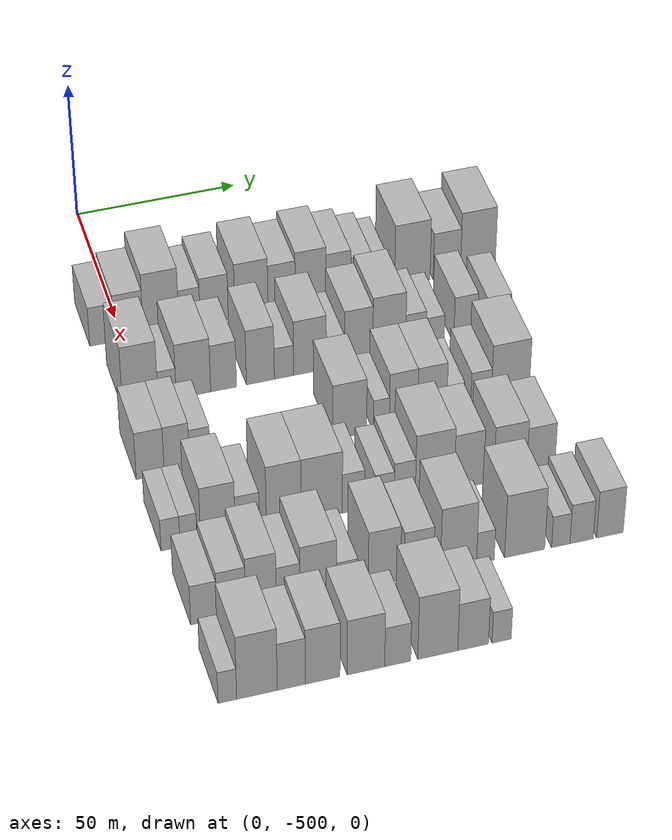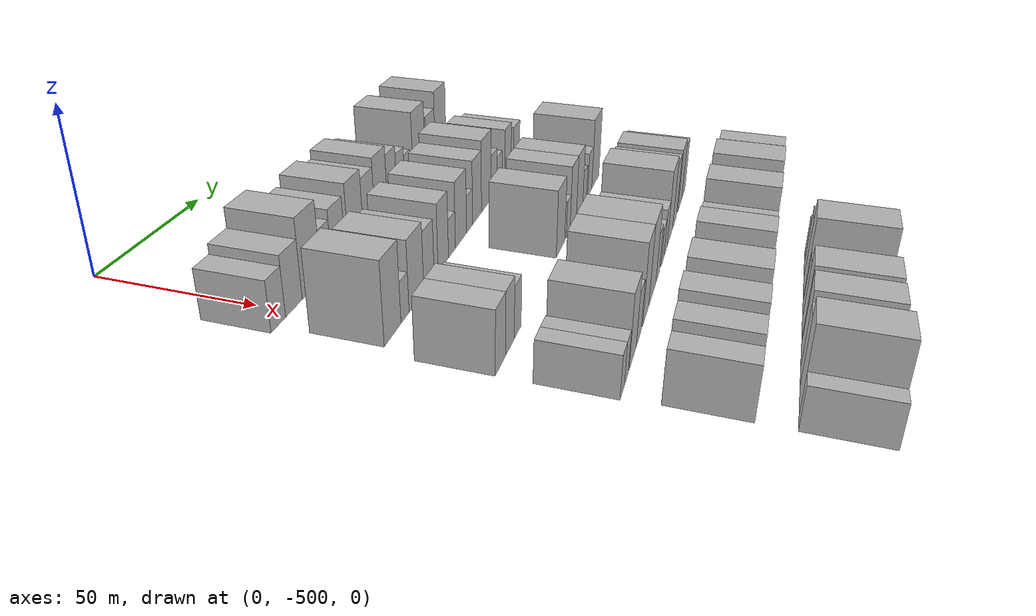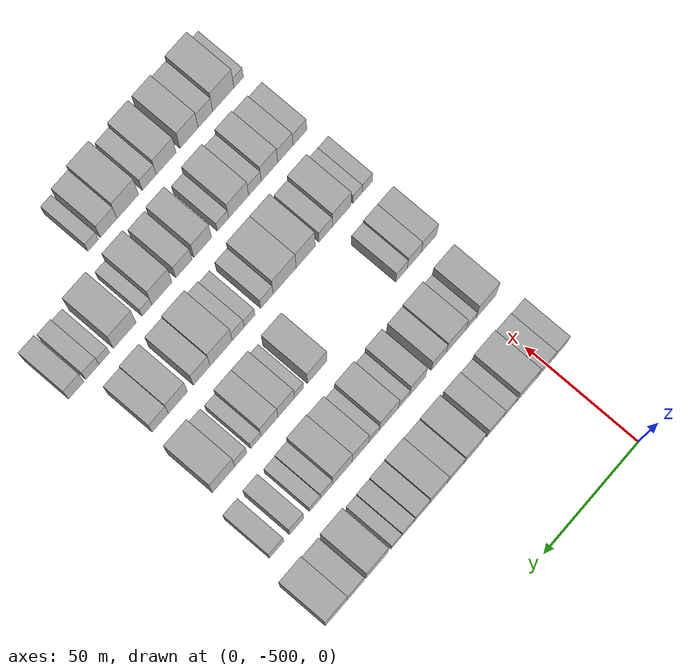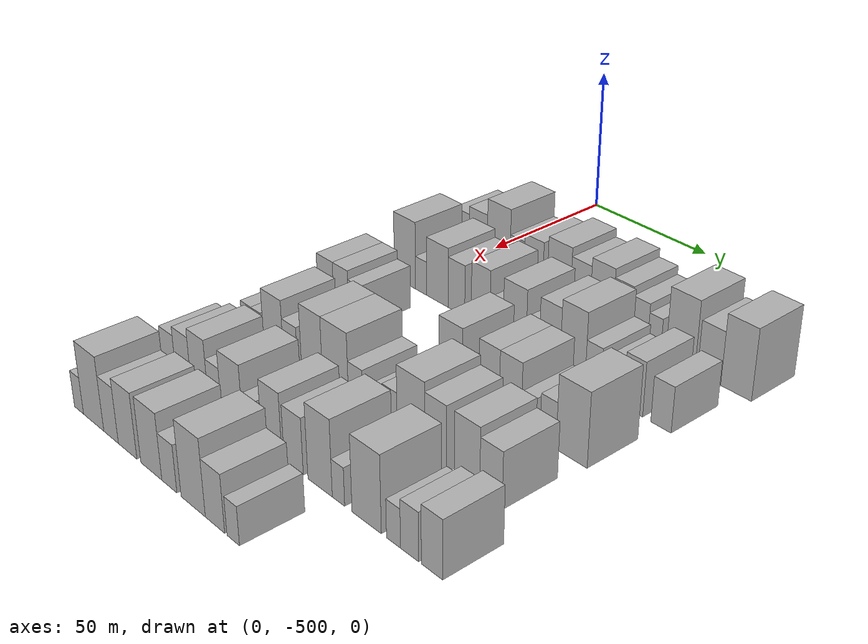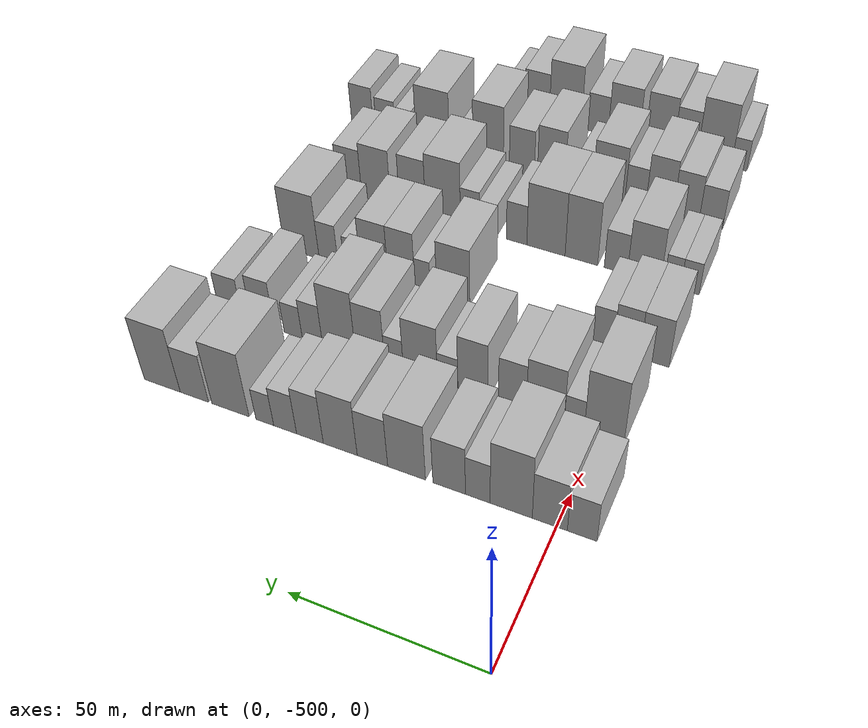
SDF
<sdf version="1.6">
 <world name="default">
  <model name="building_1">
   <static>1</static>
   <pose>50.0000 -506.3018 0 0.000000 0.000000 0.000000</pose>
   <link name="link">
    <pose>0 0 7.50 0 0 0</pose>
    <collision name="collision"><geometry><box><size>20.0000 7.3964 15.0000</size></box></geometry></collision>
    <visual name="visual">
     <cast_shadows>0</cast_shadows>
     <geometry><box><size>20.0000 7.3964 15.0000</size></box></geometry>
     <material>
      <script>
       <uri>model://HANNAS_wall/materials/scripts</uri>
       <uri>model://HANNAS_wall/materials/textures</uri>
       <name>vrc/HANNAS_wall</name>
      </script>
     </material>
    </visual>
   </link>
  </model>
  <model name="building_2">
   <static>1</static>
   <pose>50.0000 -498.1552 0 0.000000 0.000000 0.000000</pose>
   <link name="link">
    <pose>0 0 9.00 0 0 0</pose>
    <collision name="collision"><geometry><box><size>20.0000 8.8969 18.0000</size></box></geometry></collision>
    <visual name="visual">
     <cast_shadows>0</cast_shadows>
     <geometry><box><size>20.0000 8.8969 18.0000</size></box></geometry>
     <material>
      <script>
       <uri>model://HANNAS_wall/materials/scripts</uri>
       <uri>model://HANNAS_wall/materials/textures</uri>
       <name>vrc/HANNAS_wall</name>
      </script>
     </material>
    </visual>
   </link>
  </model>
  <model name="building_3">
   <static>1</static>
   <pose>50.0000 -488.2676 0 0.000000 0.000000 0.000000</pose>
   <link name="link">
    <pose>0 0 12.00 0 0 0</pose>
    <collision name="collision"><geometry><box><size>20.0000 10.8781 24.0000</size></box></geometry></collision>
    <visual name="visual">
     <cast_shadows>0</cast_shadows>
     <geometry><box><size>20.0000 10.8781 24.0000</size></box></geometry>
     <material>
      <script>
       <uri>model://HANNAS_wall/materials/scripts</uri>
       <uri>model://HANNAS_wall/materials/textures</uri>
       <name>vrc/HANNAS_wall</name>
      </script>
     </material>
    </visual>
   </link>
  </model>
  <model name="building_4">
   <static>1</static>
   <pose>50.0000 -479.5904 0 0.000000 0.000000 0.000000</pose>
   <link name="link">
    <pose>0 0 7.50 0 0 0</pose>
    <collision name="collision"><geometry><box><size>20.0000 6.4764 15.0000</size></box></geometry></collision>
    <visual name="visual">
     <cast_shadows>0</cast_shadows>
     <geometry><box><size>20.0000 6.4764 15.0000</size></box></geometry>
     <material>
      <script>
       <uri>model://HANNAS_wall/materials/scripts</uri>
       <uri>model://HANNAS_wall/materials/textures</uri>
       <name>vrc/HANNAS_wall</name>
      </script>
     </material>
    </visual>
   </link>
  </model>
  <model name="building_5">
   <static>1</static>
   <pose>50.0000 -472.0109 0 0.000000 0.000000 0.000000</pose>
   <link name="link">
    <pose>0 0 9.00 0 0 0</pose>
    <collision name="collision"><geometry><box><size>20.0000 8.6825 18.0000</size></box></geometry></collision>
    <visual name="visual">
     <cast_shadows>0</cast_shadows>
     <geometry><box><size>20.0000 8.6825 18.0000</size></box></geometry>
     <material>
      <script>
       <uri>model://HANNAS_wall/materials/scripts</uri>
       <uri>model://HANNAS_wall/materials/textures</uri>
       <name>vrc/HANNAS_wall</name>
      </script>
     </material>
    </visual>
   </link>
  </model>
  <model name="building_6">
   <static>1</static>
   <pose>50.0000 -460.5266 0 0.000000 0.000000 0.000000</pose>
   <link name="link">
    <pose>0 0 10.50 0 0 0</pose>
    <collision name="collision"><geometry><box><size>20.0000 10.2862 21.0000</size></box></geometry></collision>
    <visual name="visual">
     <cast_shadows>0</cast_shadows>
     <geometry><box><size>20.0000 10.2862 21.0000</size></box></geometry>
     <material>
      <script>
       <uri>model://HANNAS_wall/materials/scripts</uri>
       <uri>model://HANNAS_wall/materials/textures</uri>
       <name>vrc/HANNAS_wall</name>
      </script>
     </material>
    </visual>
   </link>
  </model>
  <model name="building_7">
   <static>1</static>
   <pose>50.0000 -451.1622 0 0.000000 0.000000 0.000000</pose>
   <link name="link">
    <pose>0 0 9.00 0 0 0</pose>
    <collision name="collision"><geometry><box><size>20.0000 8.4425 18.0000</size></box></geometry></collision>
    <visual name="visual">
     <cast_shadows>0</cast_shadows>
     <geometry><box><size>20.0000 8.4425 18.0000</size></box></geometry>
     <material>
      <script>
       <uri>model://HANNAS_wall/materials/scripts</uri>
       <uri>model://HANNAS_wall/materials/textures</uri>
       <name>vrc/HANNAS_wall</name>
      </script>
     </material>
    </visual>
   </link>
  </model>
  <model name="building_8">
   <static>1</static>
   <pose>50.0000 -442.1549 0 0.000000 0.000000 0.000000</pose>
   <link name="link">
    <pose>0 0 10.50 0 0 0</pose>
    <collision name="collision"><geometry><box><size>20.0000 9.5721 21.0000</size></box></geometry></collision>
    <visual name="visual">
     <cast_shadows>0</cast_shadows>
     <geometry><box><size>20.0000 9.5721 21.0000</size></box></geometry>
     <material>
      <script>
       <uri>model://HANNAS_wall/materials/scripts</uri>
       <uri>model://HANNAS_wall/materials/textures</uri>
       <name>vrc/HANNAS_wall</name>
      </script>
     </material>
    </visual>
   </link>
  </model>
  <model name="building_9">
   <static>1</static>
   <pose>50.0000 -433.5537 0 0.000000 0.000000 0.000000</pose>
   <link name="link">
    <pose>0 0 9.00 0 0 0</pose>
    <collision name="collision"><geometry><box><size>20.0000 7.6305 18.0000</size></box></geometry></collision>
    <visual name="visual">
     <cast_shadows>0</cast_shadows>
     <geometry><box><size>20.0000 7.6305 18.0000</size></box></geometry>
     <material>
      <script>
       <uri>model://HANNAS_wall/materials/scripts</uri>
       <uri>model://HANNAS_wall/materials/textures</uri>
       <name>vrc/HANNAS_wall</name>
      </script>
     </material>
    </visual>
   </link>
  </model>
  <model name="building_10">
   <static>1</static>
   <pose>50.0000 -426.4215 0 0.000000 0.000000 0.000000</pose>
   <link name="link">
    <pose>0 0 7.50 0 0 0</pose>
    <collision name="collision"><geometry><box><size>20.0000 6.6337 15.0000</size></box></geometry></collision>
    <visual name="visual">
     <cast_shadows>0</cast_shadows>
     <geometry><box><size>20.0000 6.6337 15.0000</size></box></geometry>
     <material>
      <script>
       <uri>model://HANNAS_wall/materials/scripts</uri>
       <uri>model://HANNAS_wall/materials/textures</uri>
       <name>vrc/HANNAS_wall</name>
      </script>
     </material>
    </visual>
   </link>
  </model>
  <model name="building_11">
   <static>1</static>
   <pose>50.0000 -420.4906 0 0.000000 0.000000 0.000000</pose>
   <link name="link">
    <pose>0 0 6.00 0 0 0</pose>
    <collision name="collision"><geometry><box><size>20.0000 5.2281 12.0000</size></box></geometry></collision>
    <visual name="visual">
     <cast_shadows>0</cast_shadows>
     <geometry><box><size>20.0000 5.2281 12.0000</size></box></geometry>
     <material>
      <script>
       <uri>model://HANNAS_wall/materials/scripts</uri>
       <uri>model://HANNAS_wall/materials/textures</uri>
       <name>vrc/HANNAS_wall</name>
      </script>
     </material>
    </visual>
   </link>
  </model>
  <model name="building_12">
   <static>1</static>
   <pose>50.0000 -410.3099 0 0.000000 0.000000 0.000000</pose>
   <link name="link">
    <pose>0 0 12.00 0 0 0</pose>
    <collision name="collision"><geometry><box><size>20.0000 11.1335 24.0000</size></box></geometry></collision>
    <visual name="visual">
     <cast_shadows>0</cast_shadows>
     <geometry><box><size>20.0000 11.1335 24.0000</size></box></geometry>
     <material>
      <script>
       <uri>model://HANNAS_wall/materials/scripts</uri>
       <uri>model://HANNAS_wall/materials/textures</uri>
       <name>vrc/HANNAS_wall</name>
      </script>
     </material>
    </visual>
   </link>
  </model>
  <model name="building_13">
   <static>1</static>
   <pose>50.0000 -399.4343 0 0.000000 0.000000 0.000000</pose>
   <link name="link">
    <pose>0 0 9.00 0 0 0</pose>
    <collision name="collision"><geometry><box><size>20.0000 8.6176 18.0000</size></box></geometry></collision>
    <visual name="visual">
     <cast_shadows>0</cast_shadows>
     <geometry><box><size>20.0000 8.6176 18.0000</size></box></geometry>
     <material>
      <script>
       <uri>model://HANNAS_wall/materials/scripts</uri>
       <uri>model://HANNAS_wall/materials/textures</uri>
       <name>vrc/HANNAS_wall</name>
      </script>
     </material>
    </visual>
   </link>
  </model>
  <model name="building_14">
   <static>1</static>
   <pose>50.0000 -389.5789 0 0.000000 0.000000 0.000000</pose>
   <link name="link">
    <pose>0 0 12.00 0 0 0</pose>
    <collision name="collision"><geometry><box><size>20.0000 11.0933 24.0000</size></box></geometry></collision>
    <visual name="visual">
     <cast_shadows>0</cast_shadows>
     <geometry><box><size>20.0000 11.0933 24.0000</size></box></geometry>
     <material>
      <script>
       <uri>model://HANNAS_wall/materials/scripts</uri>
       <uri>model://HANNAS_wall/materials/textures</uri>
       <name>vrc/HANNAS_wall</name>
      </script>
     </material>
    </visual>
   </link>
  </model>
  <model name="building_106">
   <static>1</static>
   <pose>79.0000 -501.7190 0 0.000000 0.000000 0.000000</pose>
   <link name="link">
    <pose>0 0 12.00 0 0 0</pose>
    <collision name="collision"><geometry><box><size>20.0000 10.5621 24.0000</size></box></geometry></collision>
    <visual name="visual">
     <cast_shadows>0</cast_shadows>
     <geometry><box><size>20.0000 10.5621 24.0000</size></box></geometry>
     <material>
      <script>
       <uri>model://HANNAS_wall/materials/scripts</uri>
       <uri>model://HANNAS_wall/materials/textures</uri>
       <name>vrc/HANNAS_wall</name>
      </script>
     </material>
    </visual>
   </link>
  </model>
  <model name="building_107">
   <static>1</static>
   <pose>79.0000 -493.7380 0 0.000000 0.000000 0.000000</pose>
   <link name="link">
    <pose>0 0 6.00 0 0 0</pose>
    <collision name="collision"><geometry><box><size>20.0000 5.3999 12.0000</size></box></geometry></collision>
    <visual name="visual">
     <cast_shadows>0</cast_shadows>
     <geometry><box><size>20.0000 5.3999 12.0000</size></box></geometry>
     <material>
      <script>
       <uri>model://HANNAS_wall/materials/scripts</uri>
       <uri>model://HANNAS_wall/materials/textures</uri>
       <name>vrc/HANNAS_wall</name>
      </script>
     </material>
    </visual>
   </link>
  </model>
  <model name="building_108">
   <static>1</static>
   <pose>79.0000 -485.8707 0 0.000000 0.000000 0.000000</pose>
   <link name="link">
    <pose>0 0 10.50 0 0 0</pose>
    <collision name="collision"><geometry><box><size>20.0000 10.3346 21.0000</size></box></geometry></collision>
    <visual name="visual">
     <cast_shadows>0</cast_shadows>
     <geometry><box><size>20.0000 10.3346 21.0000</size></box></geometry>
     <material>
      <script>
       <uri>model://HANNAS_wall/materials/scripts</uri>
       <uri>model://HANNAS_wall/materials/textures</uri>
       <name>vrc/HANNAS_wall</name>
      </script>
     </material>
    </visual>
   </link>
  </model>
  <model name="building_109">
   <static>1</static>
   <pose>79.0000 -476.8187 0 0.000000 0.000000 0.000000</pose>
   <link name="link">
    <pose>0 0 9.00 0 0 0</pose>
    <collision name="collision"><geometry><box><size>20.0000 7.7693 18.0000</size></box></geometry></collision>
    <visual name="visual">
     <cast_shadows>0</cast_shadows>
     <geometry><box><size>20.0000 7.7693 18.0000</size></box></geometry>
     <material>
      <script>
       <uri>model://HANNAS_wall/materials/scripts</uri>
       <uri>model://HANNAS_wall/materials/textures</uri>
       <name>vrc/HANNAS_wall</name>
      </script>
     </material>
    </visual>
   </link>
  </model>
  <model name="building_110">
   <static>1</static>
   <pose>79.0000 -465.7169 0 0.000000 0.000000 0.000000</pose>
   <link name="link">
    <pose>0 0 10.50 0 0 0</pose>
    <collision name="collision"><geometry><box><size>20.0000 8.4344 21.0000</size></box></geometry></collision>
    <visual name="visual">
     <cast_shadows>0</cast_shadows>
     <geometry><box><size>20.0000 8.4344 21.0000</size></box></geometry>
     <material>
      <script>
       <uri>model://HANNAS_wall/materials/scripts</uri>
       <uri>model://HANNAS_wall/materials/textures</uri>
       <name>vrc/HANNAS_wall</name>
      </script>
     </material>
    </visual>
   </link>
  </model>
  <model name="building_111">
   <static>1</static>
   <pose>79.0000 -458.5774 0 0.000000 0.000000 0.000000</pose>
   <link name="link">
    <pose>0 0 6.00 0 0 0</pose>
    <collision name="collision"><geometry><box><size>20.0000 5.8444 12.0000</size></box></geometry></collision>
    <visual name="visual">
     <cast_shadows>0</cast_shadows>
     <geometry><box><size>20.0000 5.8444 12.0000</size></box></geometry>
     <material>
      <script>
       <uri>model://HANNAS_wall/materials/scripts</uri>
       <uri>model://HANNAS_wall/materials/textures</uri>
       <name>vrc/HANNAS_wall</name>
      </script>
     </material>
    </visual>
   </link>
  </model>
  <model name="building_112">
   <static>1</static>
   <pose>79.0000 -450.6854 0 0.000000 0.000000 0.000000</pose>
   <link name="link">
    <pose>0 0 10.50 0 0 0</pose>
    <collision name="collision"><geometry><box><size>20.0000 9.9397 21.0000</size></box></geometry></collision>
    <visual name="visual">
     <cast_shadows>0</cast_shadows>
     <geometry><box><size>20.0000 9.9397 21.0000</size></box></geometry>
     <material>
      <script>
       <uri>model://HANNAS_wall/materials/scripts</uri>
       <uri>model://HANNAS_wall/materials/textures</uri>
       <name>vrc/HANNAS_wall</name>
      </script>
     </material>
    </visual>
   </link>
  </model>
  <model name="building_113">
   <static>1</static>
   <pose>79.0000 -442.9661 0 0.000000 0.000000 0.000000</pose>
   <link name="link">
    <pose>0 0 6.00 0 0 0</pose>
    <collision name="collision"><geometry><box><size>20.0000 5.4987 12.0000</size></box></geometry></collision>
    <visual name="visual">
     <cast_shadows>0</cast_shadows>
     <geometry><box><size>20.0000 5.4987 12.0000</size></box></geometry>
     <material>
      <script>
       <uri>model://HANNAS_wall/materials/scripts</uri>
       <uri>model://HANNAS_wall/materials/textures</uri>
       <name>vrc/HANNAS_wall</name>
      </script>
     </material>
    </visual>
   </link>
  </model>
  <model name="building_114">
   <static>1</static>
   <pose>79.0000 -435.8761 0 0.000000 0.000000 0.000000</pose>
   <link name="link">
    <pose>0 0 10.50 0 0 0</pose>
    <collision name="collision"><geometry><box><size>20.0000 8.6813 21.0000</size></box></geometry></collision>
    <visual name="visual">
     <cast_shadows>0</cast_shadows>
     <geometry><box><size>20.0000 8.6813 21.0000</size></box></geometry>
     <material>
      <script>
       <uri>model://HANNAS_wall/materials/scripts</uri>
       <uri>model://HANNAS_wall/materials/textures</uri>
       <name>vrc/HANNAS_wall</name>
      </script>
     </material>
    </visual>
   </link>
  </model>
  <model name="building_115">
   <static>1</static>
   <pose>79.0000 -426.4815 0 0.000000 0.000000 0.000000</pose>
   <link name="link">
    <pose>0 0 12.00 0 0 0</pose>
    <collision name="collision"><geometry><box><size>20.0000 10.1080 24.0000</size></box></geometry></collision>
    <visual name="visual">
     <cast_shadows>0</cast_shadows>
     <geometry><box><size>20.0000 10.1080 24.0000</size></box></geometry>
     <material>
      <script>
       <uri>model://HANNAS_wall/materials/scripts</uri>
       <uri>model://HANNAS_wall/materials/textures</uri>
       <name>vrc/HANNAS_wall</name>
      </script>
     </material>
    </visual>
   </link>
  </model>
  <model name="building_116">
   <static>1</static>
   <pose>79.0000 -418.2929 0 0.000000 0.000000 0.000000</pose>
   <link name="link">
    <pose>0 0 7.50 0 0 0</pose>
    <collision name="collision"><geometry><box><size>20.0000 6.2692 15.0000</size></box></geometry></collision>
    <visual name="visual">
     <cast_shadows>0</cast_shadows>
     <geometry><box><size>20.0000 6.2692 15.0000</size></box></geometry>
     <material>
      <script>
       <uri>model://HANNAS_wall/materials/scripts</uri>
       <uri>model://HANNAS_wall/materials/textures</uri>
       <name>vrc/HANNAS_wall</name>
      </script>
     </material>
    </visual>
   </link>
  </model>
  <model name="building_117">
   <static>1</static>
   <pose>79.0000 -412.3528 0 0.000000 0.000000 0.000000</pose>
   <link name="link">
    <pose>0 0 6.00 0 0 0</pose>
    <collision name="collision"><geometry><box><size>20.0000 5.6110 12.0000</size></box></geometry></collision>
    <visual name="visual">
     <cast_shadows>0</cast_shadows>
     <geometry><box><size>20.0000 5.6110 12.0000</size></box></geometry>
     <material>
      <script>
       <uri>model://HANNAS_wall/materials/scripts</uri>
       <uri>model://HANNAS_wall/materials/textures</uri>
       <name>vrc/HANNAS_wall</name>
      </script>
     </material>
    </visual>
   </link>
  </model>
  <model name="building_118">
   <static>1</static>
   <pose>79.0000 -402.9180 0 0.000000 0.000000 0.000000</pose>
   <link name="link">
    <pose>0 0 9.00 0 0 0</pose>
    <collision name="collision"><geometry><box><size>20.0000 7.2586 18.0000</size></box></geometry></collision>
    <visual name="visual">
     <cast_shadows>0</cast_shadows>
     <geometry><box><size>20.0000 7.2586 18.0000</size></box></geometry>
     <material>
      <script>
       <uri>model://HANNAS_wall/materials/scripts</uri>
       <uri>model://HANNAS_wall/materials/textures</uri>
       <name>vrc/HANNAS_wall</name>
      </script>
     </material>
    </visual>
   </link>
  </model>
  <model name="building_119">
   <static>1</static>
   <pose>79.0000 -392.5994 0 0.000000 0.000000 0.000000</pose>
   <link name="link">
    <pose>0 0 7.50 0 0 0</pose>
    <collision name="collision"><geometry><box><size>20.0000 7.3786 15.0000</size></box></geometry></collision>
    <visual name="visual">
     <cast_shadows>0</cast_shadows>
     <geometry><box><size>20.0000 7.3786 15.0000</size></box></geometry>
     <material>
      <script>
       <uri>model://HANNAS_wall/materials/scripts</uri>
       <uri>model://HANNAS_wall/materials/textures</uri>
       <name>vrc/HANNAS_wall</name>
      </script>
     </material>
    </visual>
   </link>
  </model>
  <model name="building_220">
   <static>1</static>
   <pose>108.0000 -505.9182 0 0.000000 0.000000 0.000000</pose>
   <link name="link">
    <pose>0 0 9.00 0 0 0</pose>
    <collision name="collision"><geometry><box><size>20.0000 8.1636 18.0000</size></box></geometry></collision>
    <visual name="visual">
     <cast_shadows>0</cast_shadows>
     <geometry><box><size>20.0000 8.1636 18.0000</size></box></geometry>
     <material>
      <script>
       <uri>model://HANNAS_wall/materials/scripts</uri>
       <uri>model://HANNAS_wall/materials/textures</uri>
       <name>vrc/HANNAS_wall</name>
      </script>
     </material>
    </visual>
   </link>
  </model>
  <model name="building_221">
   <static>1</static>
   <pose>108.0000 -498.1446 0 0.000000 0.000000 0.000000</pose>
   <link name="link">
    <pose>0 0 9.00 0 0 0</pose>
    <collision name="collision"><geometry><box><size>20.0000 7.3835 18.0000</size></box></geometry></collision>
    <visual name="visual">
     <cast_shadows>0</cast_shadows>
     <geometry><box><size>20.0000 7.3835 18.0000</size></box></geometry>
     <material>
      <script>
       <uri>model://HANNAS_wall/materials/scripts</uri>
       <uri>model://HANNAS_wall/materials/textures</uri>
       <name>vrc/HANNAS_wall</name>
      </script>
     </material>
    </visual>
   </link>
  </model>
  <model name="building_222">
   <static>1</static>
   <pose>108.0000 -491.4103 0 0.000000 0.000000 0.000000</pose>
   <link name="link">
    <pose>0 0 7.50 0 0 0</pose>
    <collision name="collision"><geometry><box><size>20.0000 6.0851 15.0000</size></box></geometry></collision>
    <visual name="visual">
     <cast_shadows>0</cast_shadows>
     <geometry><box><size>20.0000 6.0851 15.0000</size></box></geometry>
     <material>
      <script>
       <uri>model://HANNAS_wall/materials/scripts</uri>
       <uri>model://HANNAS_wall/materials/textures</uri>
       <name>vrc/HANNAS_wall</name>
      </script>
     </material>
    </visual>
   </link>
  </model>
  <model name="building_223">
   <static>1</static>
   <pose>108.0000 -447.1704 0 0.000000 0.000000 0.000000</pose>
   <link name="link">
    <pose>0 0 10.50 0 0 0</pose>
    <collision name="collision"><geometry><box><size>20.0000 10.1316 21.0000</size></box></geometry></collision>
    <visual name="visual">
     <cast_shadows>0</cast_shadows>
     <geometry><box><size>20.0000 10.1316 21.0000</size></box></geometry>
     <material>
      <script>
       <uri>model://HANNAS_wall/materials/scripts</uri>
       <uri>model://HANNAS_wall/materials/textures</uri>
       <name>vrc/HANNAS_wall</name>
      </script>
     </material>
    </visual>
   </link>
  </model>
  <model name="building_224">
   <static>1</static>
   <pose>108.0000 -437.7040 0 0.000000 0.000000 0.000000</pose>
   <link name="link">
    <pose>0 0 6.00 0 0 0</pose>
    <collision name="collision"><geometry><box><size>20.0000 4.8012 12.0000</size></box></geometry></collision>
    <visual name="visual">
     <cast_shadows>0</cast_shadows>
     <geometry><box><size>20.0000 4.8012 12.0000</size></box></geometry>
     <material>
      <script>
       <uri>model://HANNAS_wall/materials/scripts</uri>
       <uri>model://HANNAS_wall/materials/textures</uri>
       <name>vrc/HANNAS_wall</name>
      </script>
     </material>
    </visual>
   </link>
  </model>
  <model name="building_225">
   <static>1</static>
   <pose>108.0000 -431.0882 0 0.000000 0.000000 0.000000</pose>
   <link name="link">
    <pose>0 0 10.50 0 0 0</pose>
    <collision name="collision"><geometry><box><size>20.0000 8.4305 21.0000</size></box></geometry></collision>
    <visual name="visual">
     <cast_shadows>0</cast_shadows>
     <geometry><box><size>20.0000 8.4305 21.0000</size></box></geometry>
     <material>
      <script>
       <uri>model://HANNAS_wall/materials/scripts</uri>
       <uri>model://HANNAS_wall/materials/textures</uri>
       <name>vrc/HANNAS_wall</name>
      </script>
     </material>
    </visual>
   </link>
  </model>
  <model name="building_226">
   <static>1</static>
   <pose>108.0000 -422.4763 0 0.000000 0.000000 0.000000</pose>
   <link name="link">
    <pose>0 0 10.50 0 0 0</pose>
    <collision name="collision"><geometry><box><size>20.0000 8.7931 21.0000</size></box></geometry></collision>
    <visual name="visual">
     <cast_shadows>0</cast_shadows>
     <geometry><box><size>20.0000 8.7931 21.0000</size></box></geometry>
     <material>
      <script>
       <uri>model://HANNAS_wall/materials/scripts</uri>
       <uri>model://HANNAS_wall/materials/textures</uri>
       <name>vrc/HANNAS_wall</name>
      </script>
     </material>
    </visual>
   </link>
  </model>
  <model name="building_227">
   <static>1</static>
   <pose>108.0000 -415.4278 0 0.000000 0.000000 0.000000</pose>
   <link name="link">
    <pose>0 0 6.00 0 0 0</pose>
    <collision name="collision"><geometry><box><size>20.0000 5.3039 12.0000</size></box></geometry></collision>
    <visual name="visual">
     <cast_shadows>0</cast_shadows>
     <geometry><box><size>20.0000 5.3039 12.0000</size></box></geometry>
     <material>
      <script>
       <uri>model://HANNAS_wall/materials/scripts</uri>
       <uri>model://HANNAS_wall/materials/textures</uri>
       <name>vrc/HANNAS_wall</name>
      </script>
     </material>
    </visual>
   </link>
  </model>
  <model name="building_228">
   <static>1</static>
   <pose>108.0000 -407.6796 0 0.000000 0.000000 0.000000</pose>
   <link name="link">
    <pose>0 0 7.50 0 0 0</pose>
    <collision name="collision"><geometry><box><size>20.0000 6.1925 15.0000</size></box></geometry></collision>
    <visual name="visual">
     <cast_shadows>0</cast_shadows>
     <geometry><box><size>20.0000 6.1925 15.0000</size></box></geometry>
     <material>
      <script>
       <uri>model://HANNAS_wall/materials/scripts</uri>
       <uri>model://HANNAS_wall/materials/textures</uri>
       <name>vrc/HANNAS_wall</name>
      </script>
     </material>
    </visual>
   </link>
  </model>
  <model name="building_229">
   <static>1</static>
   <pose>108.0000 -398.8263 0 0.000000 0.000000 0.000000</pose>
   <link name="link">
    <pose>0 0 12.00 0 0 0</pose>
    <collision name="collision"><geometry><box><size>20.0000 11.5142 24.0000</size></box></geometry></collision>
    <visual name="visual">
     <cast_shadows>0</cast_shadows>
     <geometry><box><size>20.0000 11.5142 24.0000</size></box></geometry>
     <material>
      <script>
       <uri>model://HANNAS_wall/materials/scripts</uri>
       <uri>model://HANNAS_wall/materials/textures</uri>
       <name>vrc/HANNAS_wall</name>
      </script>
     </material>
    </visual>
   </link>
  </model>
  <model name="building_336">
   <static>1</static>
   <pose>137.0000 -507.3040 0 0.000000 0.000000 0.000000</pose>
   <link name="link">
    <pose>0 0 6.00 0 0 0</pose>
    <collision name="collision"><geometry><box><size>20.0000 5.3920 12.0000</size></box></geometry></collision>
    <visual name="visual">
     <cast_shadows>0</cast_shadows>
     <geometry><box><size>20.0000 5.3920 12.0000</size></box></geometry>
     <material>
      <script>
       <uri>model://HANNAS_wall/materials/scripts</uri>
       <uri>model://HANNAS_wall/materials/textures</uri>
       <name>vrc/HANNAS_wall</name>
      </script>
     </material>
    </visual>
   </link>
  </model>
  <model name="building_337">
   <static>1</static>
   <pose>137.0000 -502.1641 0 0.000000 0.000000 0.000000</pose>
   <link name="link">
    <pose>0 0 6.00 0 0 0</pose>
    <collision name="collision"><geometry><box><size>20.0000 4.8877 12.0000</size></box></geometry></collision>
    <visual name="visual">
     <cast_shadows>0</cast_shadows>
     <geometry><box><size>20.0000 4.8877 12.0000</size></box></geometry>
     <material>
      <script>
       <uri>model://HANNAS_wall/materials/scripts</uri>
       <uri>model://HANNAS_wall/materials/textures</uri>
       <name>vrc/HANNAS_wall</name>
      </script>
     </material>
    </visual>
   </link>
  </model>
  <model name="building_338">
   <static>1</static>
   <pose>137.0000 -493.7613 0 0.000000 0.000000 0.000000</pose>
   <link name="link">
    <pose>0 0 10.50 0 0 0</pose>
    <collision name="collision"><geometry><box><size>20.0000 9.9180 21.0000</size></box></geometry></collision>
    <visual name="visual">
     <cast_shadows>0</cast_shadows>
     <geometry><box><size>20.0000 9.9180 21.0000</size></box></geometry>
     <material>
      <script>
       <uri>model://HANNAS_wall/materials/scripts</uri>
       <uri>model://HANNAS_wall/materials/textures</uri>
       <name>vrc/HANNAS_wall</name>
      </script>
     </material>
    </visual>
   </link>
  </model>
  <model name="building_339">
   <static>1</static>
   <pose>137.0000 -485.3178 0 0.000000 0.000000 0.000000</pose>
   <link name="link">
    <pose>0 0 7.50 0 0 0</pose>
    <collision name="collision"><geometry><box><size>20.0000 6.9691 15.0000</size></box></geometry></collision>
    <visual name="visual">
     <cast_shadows>0</cast_shadows>
     <geometry><box><size>20.0000 6.9691 15.0000</size></box></geometry>
     <material>
      <script>
       <uri>model://HANNAS_wall/materials/scripts</uri>
       <uri>model://HANNAS_wall/materials/textures</uri>
       <name>vrc/HANNAS_wall</name>
      </script>
     </material>
    </visual>
   </link>
  </model>
  <model name="building_340">
   <static>1</static>
   <pose>137.0000 -474.8213 0 0.000000 0.000000 0.000000</pose>
   <link name="link">
    <pose>0 0 12.00 0 0 0</pose>
    <collision name="collision"><geometry><box><size>20.0000 10.0239 24.0000</size></box></geometry></collision>
    <visual name="visual">
     <cast_shadows>0</cast_shadows>
     <geometry><box><size>20.0000 10.0239 24.0000</size></box></geometry>
     <material>
      <script>
       <uri>model://HANNAS_wall/materials/scripts</uri>
       <uri>model://HANNAS_wall/materials/textures</uri>
       <name>vrc/HANNAS_wall</name>
      </script>
     </material>
    </visual>
   </link>
  </model>
  <model name="building_341">
   <static>1</static>
   <pose>137.0000 -463.8312 0 0.000000 0.000000 0.000000</pose>
   <link name="link">
    <pose>0 0 12.00 0 0 0</pose>
    <collision name="collision"><geometry><box><size>20.0000 11.9562 24.0000</size></box></geometry></collision>
    <visual name="visual">
     <cast_shadows>0</cast_shadows>
     <geometry><box><size>20.0000 11.9562 24.0000</size></box></geometry>
     <material>
      <script>
       <uri>model://HANNAS_wall/materials/scripts</uri>
       <uri>model://HANNAS_wall/materials/textures</uri>
       <name>vrc/HANNAS_wall</name>
      </script>
     </material>
    </visual>
   </link>
  </model>
  <model name="building_342">
   <static>1</static>
   <pose>137.0000 -454.6068 0 0.000000 0.000000 0.000000</pose>
   <link name="link">
    <pose>0 0 7.50 0 0 0</pose>
    <collision name="collision"><geometry><box><size>20.0000 6.4926 15.0000</size></box></geometry></collision>
    <visual name="visual">
     <cast_shadows>0</cast_shadows>
     <geometry><box><size>20.0000 6.4926 15.0000</size></box></geometry>
     <material>
      <script>
       <uri>model://HANNAS_wall/materials/scripts</uri>
       <uri>model://HANNAS_wall/materials/textures</uri>
       <name>vrc/HANNAS_wall</name>
      </script>
     </material>
    </visual>
   </link>
  </model>
  <model name="building_343">
   <static>1</static>
   <pose>137.0000 -445.5616 0 0.000000 0.000000 0.000000</pose>
   <link name="link">
    <pose>0 0 6.00 0 0 0</pose>
    <collision name="collision"><geometry><box><size>20.0000 5.5979 12.0000</size></box></geometry></collision>
    <visual name="visual">
     <cast_shadows>0</cast_shadows>
     <geometry><box><size>20.0000 5.5979 12.0000</size></box></geometry>
     <material>
      <script>
       <uri>model://HANNAS_wall/materials/scripts</uri>
       <uri>model://HANNAS_wall/materials/textures</uri>
       <name>vrc/HANNAS_wall</name>
      </script>
     </material>
    </visual>
   </link>
  </model>
  <model name="building_344">
   <static>1</static>
   <pose>137.0000 -439.6605 0 0.000000 0.000000 0.000000</pose>
   <link name="link">
    <pose>0 0 7.50 0 0 0</pose>
    <collision name="collision"><geometry><box><size>20.0000 6.2043 15.0000</size></box></geometry></collision>
    <visual name="visual">
     <cast_shadows>0</cast_shadows>
     <geometry><box><size>20.0000 6.2043 15.0000</size></box></geometry>
     <material>
      <script>
       <uri>model://HANNAS_wall/materials/scripts</uri>
       <uri>model://HANNAS_wall/materials/textures</uri>
       <name>vrc/HANNAS_wall</name>
      </script>
     </material>
    </visual>
   </link>
  </model>
  <model name="building_345">
   <static>1</static>
   <pose>137.0000 -430.8374 0 0.000000 0.000000 0.000000</pose>
   <link name="link">
    <pose>0 0 12.00 0 0 0</pose>
    <collision name="collision"><geometry><box><size>20.0000 11.4418 24.0000</size></box></geometry></collision>
    <visual name="visual">
     <cast_shadows>0</cast_shadows>
     <geometry><box><size>20.0000 11.4418 24.0000</size></box></geometry>
     <material>
      <script>
       <uri>model://HANNAS_wall/materials/scripts</uri>
       <uri>model://HANNAS_wall/materials/textures</uri>
       <name>vrc/HANNAS_wall</name>
      </script>
     </material>
    </visual>
   </link>
  </model>
  <model name="building_346">
   <static>1</static>
   <pose>137.0000 -420.7628 0 0.000000 0.000000 0.000000</pose>
   <link name="link">
    <pose>0 0 10.50 0 0 0</pose>
    <collision name="collision"><geometry><box><size>20.0000 8.7074 21.0000</size></box></geometry></collision>
    <visual name="visual">
     <cast_shadows>0</cast_shadows>
     <geometry><box><size>20.0000 8.7074 21.0000</size></box></geometry>
     <material>
      <script>
       <uri>model://HANNAS_wall/materials/scripts</uri>
       <uri>model://HANNAS_wall/materials/textures</uri>
       <name>vrc/HANNAS_wall</name>
      </script>
     </material>
    </visual>
   </link>
  </model>
  <model name="building_347">
   <static>1</static>
   <pose>137.0000 -408.4995 0 0.000000 0.000000 0.000000</pose>
   <link name="link">
    <pose>0 0 10.50 0 0 0</pose>
    <collision name="collision"><geometry><box><size>20.0000 9.8193 21.0000</size></box></geometry></collision>
    <visual name="visual">
     <cast_shadows>0</cast_shadows>
     <geometry><box><size>20.0000 9.8193 21.0000</size></box></geometry>
     <material>
      <script>
       <uri>model://HANNAS_wall/materials/scripts</uri>
       <uri>model://HANNAS_wall/materials/textures</uri>
       <name>vrc/HANNAS_wall</name>
      </script>
     </material>
    </visual>
   </link>
  </model>
  <model name="building_348">
   <static>1</static>
   <pose>137.0000 -399.4027 0 0.000000 0.000000 0.000000</pose>
   <link name="link">
    <pose>0 0 9.00 0 0 0</pose>
    <collision name="collision"><geometry><box><size>20.0000 8.3743 18.0000</size></box></geometry></collision>
    <visual name="visual">
     <cast_shadows>0</cast_shadows>
     <geometry><box><size>20.0000 8.3743 18.0000</size></box></geometry>
     <material>
      <script>
       <uri>model://HANNAS_wall/materials/scripts</uri>
       <uri>model://HANNAS_wall/materials/textures</uri>
       <name>vrc/HANNAS_wall</name>
      </script>
     </material>
    </visual>
   </link>
  </model>
  <model name="building_446">
   <static>1</static>
   <pose>166.0000 -505.3471 0 0.000000 0.000000 0.000000</pose>
   <link name="link">
    <pose>0 0 7.50 0 0 0</pose>
    <collision name="collision"><geometry><box><size>20.0000 7.3057 15.0000</size></box></geometry></collision>
    <visual name="visual">
     <cast_shadows>0</cast_shadows>
     <geometry><box><size>20.0000 7.3057 15.0000</size></box></geometry>
     <material>
      <script>
       <uri>model://HANNAS_wall/materials/scripts</uri>
       <uri>model://HANNAS_wall/materials/textures</uri>
       <name>vrc/HANNAS_wall</name>
      </script>
     </material>
    </visual>
   </link>
  </model>
  <model name="building_447">
   <static>1</static>
   <pose>166.0000 -497.6688 0 0.000000 0.000000 0.000000</pose>
   <link name="link">
    <pose>0 0 9.00 0 0 0</pose>
    <collision name="collision"><geometry><box><size>20.0000 8.0510 18.0000</size></box></geometry></collision>
    <visual name="visual">
     <cast_shadows>0</cast_shadows>
     <geometry><box><size>20.0000 8.0510 18.0000</size></box></geometry>
     <material>
      <script>
       <uri>model://HANNAS_wall/materials/scripts</uri>
       <uri>model://HANNAS_wall/materials/textures</uri>
       <name>vrc/HANNAS_wall</name>
      </script>
     </material>
    </visual>
   </link>
  </model>
  <model name="building_448">
   <static>1</static>
   <pose>166.0000 -489.3341 0 0.000000 0.000000 0.000000</pose>
   <link name="link">
    <pose>0 0 10.50 0 0 0</pose>
    <collision name="collision"><geometry><box><size>20.0000 8.6183 21.0000</size></box></geometry></collision>
    <visual name="visual">
     <cast_shadows>0</cast_shadows>
     <geometry><box><size>20.0000 8.6183 21.0000</size></box></geometry>
     <material>
      <script>
       <uri>model://HANNAS_wall/materials/scripts</uri>
       <uri>model://HANNAS_wall/materials/textures</uri>
       <name>vrc/HANNAS_wall</name>
      </script>
     </material>
    </visual>
   </link>
  </model>
  <model name="building_449">
   <static>1</static>
   <pose>166.0000 -481.7069 0 0.000000 0.000000 0.000000</pose>
   <link name="link">
    <pose>0 0 7.50 0 0 0</pose>
    <collision name="collision"><geometry><box><size>20.0000 6.6359 15.0000</size></box></geometry></collision>
    <visual name="visual">
     <cast_shadows>0</cast_shadows>
     <geometry><box><size>20.0000 6.6359 15.0000</size></box></geometry>
     <material>
      <script>
       <uri>model://HANNAS_wall/materials/scripts</uri>
       <uri>model://HANNAS_wall/materials/textures</uri>
       <name>vrc/HANNAS_wall</name>
      </script>
     </material>
    </visual>
   </link>
  </model>
  <model name="building_450">
   <static>1</static>
   <pose>166.0000 -473.1868 0 0.000000 0.000000 0.000000</pose>
   <link name="link">
    <pose>0 0 10.50 0 0 0</pose>
    <collision name="collision"><geometry><box><size>20.0000 10.4043 21.0000</size></box></geometry></collision>
    <visual name="visual">
     <cast_shadows>0</cast_shadows>
     <geometry><box><size>20.0000 10.4043 21.0000</size></box></geometry>
     <material>
      <script>
       <uri>model://HANNAS_wall/materials/scripts</uri>
       <uri>model://HANNAS_wall/materials/textures</uri>
       <name>vrc/HANNAS_wall</name>
      </script>
     </material>
    </visual>
   </link>
  </model>
  <model name="building_451">
   <static>1</static>
   <pose>166.0000 -465.0005 0 0.000000 0.000000 0.000000</pose>
   <link name="link">
    <pose>0 0 6.00 0 0 0</pose>
    <collision name="collision"><geometry><box><size>20.0000 5.9682 12.0000</size></box></geometry></collision>
    <visual name="visual">
     <cast_shadows>0</cast_shadows>
     <geometry><box><size>20.0000 5.9682 12.0000</size></box></geometry>
     <material>
      <script>
       <uri>model://HANNAS_wall/materials/scripts</uri>
       <uri>model://HANNAS_wall/materials/textures</uri>
       <name>vrc/HANNAS_wall</name>
      </script>
     </material>
    </visual>
   </link>
  </model>
  <model name="building_452">
   <static>1</static>
   <pose>166.0000 -454.4294 0 0.000000 0.000000 0.000000</pose>
   <link name="link">
    <pose>0 0 10.50 0 0 0</pose>
    <collision name="collision"><geometry><box><size>20.0000 9.1740 21.0000</size></box></geometry></collision>
    <visual name="visual">
     <cast_shadows>0</cast_shadows>
     <geometry><box><size>20.0000 9.1740 21.0000</size></box></geometry>
     <material>
      <script>
       <uri>model://HANNAS_wall/materials/scripts</uri>
       <uri>model://HANNAS_wall/materials/textures</uri>
       <name>vrc/HANNAS_wall</name>
      </script>
     </material>
    </visual>
   </link>
  </model>
  <model name="building_453">
   <static>1</static>
   <pose>166.0000 -444.6286 0 0.000000 0.000000 0.000000</pose>
   <link name="link">
    <pose>0 0 9.00 0 0 0</pose>
    <collision name="collision"><geometry><box><size>20.0000 8.4277 18.0000</size></box></geometry></collision>
    <visual name="visual">
     <cast_shadows>0</cast_shadows>
     <geometry><box><size>20.0000 8.4277 18.0000</size></box></geometry>
     <material>
      <script>
       <uri>model://HANNAS_wall/materials/scripts</uri>
       <uri>model://HANNAS_wall/materials/textures</uri>
       <name>vrc/HANNAS_wall</name>
      </script>
     </material>
    </visual>
   </link>
  </model>
  <model name="building_454">
   <static>1</static>
   <pose>166.0000 -433.2168 0 0.000000 0.000000 0.000000</pose>
   <link name="link">
    <pose>0 0 12.00 0 0 0</pose>
    <collision name="collision"><geometry><box><size>20.0000 10.3958 24.0000</size></box></geometry></collision>
    <visual name="visual">
     <cast_shadows>0</cast_shadows>
     <geometry><box><size>20.0000 10.3958 24.0000</size></box></geometry>
     <material>
      <script>
       <uri>model://HANNAS_wall/materials/scripts</uri>
       <uri>model://HANNAS_wall/materials/textures</uri>
       <name>vrc/HANNAS_wall</name>
      </script>
     </material>
    </visual>
   </link>
  </model>
  <model name="building_455">
   <static>1</static>
   <pose>166.0000 -425.4561 0 0.000000 0.000000 0.000000</pose>
   <link name="link">
    <pose>0 0 6.00 0 0 0</pose>
    <collision name="collision"><geometry><box><size>20.0000 5.1257 12.0000</size></box></geometry></collision>
    <visual name="visual">
     <cast_shadows>0</cast_shadows>
     <geometry><box><size>20.0000 5.1257 12.0000</size></box></geometry>
     <material>
      <script>
       <uri>model://HANNAS_wall/materials/scripts</uri>
       <uri>model://HANNAS_wall/materials/textures</uri>
       <name>vrc/HANNAS_wall</name>
      </script>
     </material>
    </visual>
   </link>
  </model>
  <model name="building_456">
   <static>1</static>
   <pose>166.0000 -414.0540 0 0.000000 0.000000 0.000000</pose>
   <link name="link">
    <pose>0 0 12.00 0 0 0</pose>
    <collision name="collision"><geometry><box><size>20.0000 11.6785 24.0000</size></box></geometry></collision>
    <visual name="visual">
     <cast_shadows>0</cast_shadows>
     <geometry><box><size>20.0000 11.6785 24.0000</size></box></geometry>
     <material>
      <script>
       <uri>model://HANNAS_wall/materials/scripts</uri>
       <uri>model://HANNAS_wall/materials/textures</uri>
       <name>vrc/HANNAS_wall</name>
      </script>
     </material>
    </visual>
   </link>
  </model>
  <model name="building_457">
   <static>1</static>
   <pose>166.0000 -403.5260 0 0.000000 0.000000 0.000000</pose>
   <link name="link">
    <pose>0 0 6.00 0 0 0</pose>
    <collision name="collision"><geometry><box><size>20.0000 5.3777 12.0000</size></box></geometry></collision>
    <visual name="visual">
     <cast_shadows>0</cast_shadows>
     <geometry><box><size>20.0000 5.3777 12.0000</size></box></geometry>
     <material>
      <script>
       <uri>model://HANNAS_wall/materials/scripts</uri>
       <uri>model://HANNAS_wall/materials/textures</uri>
       <name>vrc/HANNAS_wall</name>
      </script>
     </material>
    </visual>
   </link>
  </model>
  <model name="building_458">
   <static>1</static>
   <pose>166.0000 -397.4325 0 0.000000 0.000000 0.000000</pose>
   <link name="link">
    <pose>0 0 7.50 0 0 0</pose>
    <collision name="collision"><geometry><box><size>20.0000 6.8092 15.0000</size></box></geometry></collision>
    <visual name="visual">
     <cast_shadows>0</cast_shadows>
     <geometry><box><size>20.0000 6.8092 15.0000</size></box></geometry>
     <material>
      <script>
       <uri>model://HANNAS_wall/materials/scripts</uri>
       <uri>model://HANNAS_wall/materials/textures</uri>
       <name>vrc/HANNAS_wall</name>
      </script>
     </material>
    </visual>
   </link>
  </model>
  <model name="building_459">
   <static>1</static>
   <pose>166.0000 -389.1235 0 0.000000 0.000000 0.000000</pose>
   <link name="link">
    <pose>0 0 9.00 0 0 0</pose>
    <collision name="collision"><geometry><box><size>20.0000 7.8088 18.0000</size></box></geometry></collision>
    <visual name="visual">
     <cast_shadows>0</cast_shadows>
     <geometry><box><size>20.0000 7.8088 18.0000</size></box></geometry>
     <material>
      <script>
       <uri>model://HANNAS_wall/materials/scripts</uri>
       <uri>model://HANNAS_wall/materials/textures</uri>
       <name>vrc/HANNAS_wall</name>
      </script>
     </material>
    </visual>
   </link>
  </model>
  <model name="building_561">
   <static>1</static>
   <pose>195.0000 -506.4658 0 0.000000 0.000000 0.000000</pose>
   <link name="link">
    <pose>0 0 6.00 0 0 0</pose>
    <collision name="collision"><geometry><box><size>20.0000 5.0684 12.0000</size></box></geometry></collision>
    <visual name="visual">
     <cast_shadows>0</cast_shadows>
     <geometry><box><size>20.0000 5.0684 12.0000</size></box></geometry>
     <material>
      <script>
       <uri>model://HANNAS_wall/materials/scripts</uri>
       <uri>model://HANNAS_wall/materials/textures</uri>
       <name>vrc/HANNAS_wall</name>
      </script>
     </material>
    </visual>
   </link>
  </model>
  <model name="building_562">
   <static>1</static>
   <pose>195.0000 -498.3792 0 0.000000 0.000000 0.000000</pose>
   <link name="link">
    <pose>0 0 12.00 0 0 0</pose>
    <collision name="collision"><geometry><box><size>20.0000 11.1048 24.0000</size></box></geometry></collision>
    <visual name="visual">
     <cast_shadows>0</cast_shadows>
     <geometry><box><size>20.0000 11.1048 24.0000</size></box></geometry>
     <material>
      <script>
       <uri>model://HANNAS_wall/materials/scripts</uri>
       <uri>model://HANNAS_wall/materials/textures</uri>
       <name>vrc/HANNAS_wall</name>
      </script>
     </material>
    </visual>
   </link>
  </model>
  <model name="building_563">
   <static>1</static>
   <pose>195.0000 -488.9709 0 0.000000 0.000000 0.000000</pose>
   <link name="link">
    <pose>0 0 9.00 0 0 0</pose>
    <collision name="collision"><geometry><box><size>20.0000 7.7118 18.0000</size></box></geometry></collision>
    <visual name="visual">
     <cast_shadows>0</cast_shadows>
     <geometry><box><size>20.0000 7.7118 18.0000</size></box></geometry>
     <material>
      <script>
       <uri>model://HANNAS_wall/materials/scripts</uri>
       <uri>model://HANNAS_wall/materials/textures</uri>
       <name>vrc/HANNAS_wall</name>
      </script>
     </material>
    </visual>
   </link>
  </model>
  <model name="building_564">
   <static>1</static>
   <pose>195.0000 -480.3451 0 0.000000 0.000000 0.000000</pose>
   <link name="link">
    <pose>0 0 10.50 0 0 0</pose>
    <collision name="collision"><geometry><box><size>20.0000 9.5398 21.0000</size></box></geometry></collision>
    <visual name="visual">
     <cast_shadows>0</cast_shadows>
     <geometry><box><size>20.0000 9.5398 21.0000</size></box></geometry>
     <material>
      <script>
       <uri>model://HANNAS_wall/materials/scripts</uri>
       <uri>model://HANNAS_wall/materials/textures</uri>
       <name>vrc/HANNAS_wall</name>
      </script>
     </material>
    </visual>
   </link>
  </model>
  <model name="building_565">
   <static>1</static>
   <pose>195.0000 -468.3740 0 0.000000 0.000000 0.000000</pose>
   <link name="link">
    <pose>0 0 10.50 0 0 0</pose>
    <collision name="collision"><geometry><box><size>20.0000 10.4024 21.0000</size></box></geometry></collision>
    <visual name="visual">
     <cast_shadows>0</cast_shadows>
     <geometry><box><size>20.0000 10.4024 21.0000</size></box></geometry>
     <material>
      <script>
       <uri>model://HANNAS_wall/materials/scripts</uri>
       <uri>model://HANNAS_wall/materials/textures</uri>
       <name>vrc/HANNAS_wall</name>
      </script>
     </material>
    </visual>
   </link>
  </model>
  <model name="building_566">
   <static>1</static>
   <pose>195.0000 -459.5660 0 0.000000 0.000000 0.000000</pose>
   <link name="link">
    <pose>0 0 7.50 0 0 0</pose>
    <collision name="collision"><geometry><box><size>20.0000 7.2136 15.0000</size></box></geometry></collision>
    <visual name="visual">
     <cast_shadows>0</cast_shadows>
     <geometry><box><size>20.0000 7.2136 15.0000</size></box></geometry>
     <material>
      <script>
       <uri>model://HANNAS_wall/materials/scripts</uri>
       <uri>model://HANNAS_wall/materials/textures</uri>
       <name>vrc/HANNAS_wall</name>
      </script>
     </material>
    </visual>
   </link>
  </model>
  <model name="building_567">
   <static>1</static>
   <pose>195.0000 -448.3666 0 0.000000 0.000000 0.000000</pose>
   <link name="link">
    <pose>0 0 12.00 0 0 0</pose>
    <collision name="collision"><geometry><box><size>20.0000 11.1851 24.0000</size></box></geometry></collision>
    <visual name="visual">
     <cast_shadows>0</cast_shadows>
     <geometry><box><size>20.0000 11.1851 24.0000</size></box></geometry>
     <material>
      <script>
       <uri>model://HANNAS_wall/materials/scripts</uri>
       <uri>model://HANNAS_wall/materials/textures</uri>
       <name>vrc/HANNAS_wall</name>
      </script>
     </material>
    </visual>
   </link>
  </model>
  <model name="building_568">
   <static>1</static>
   <pose>195.0000 -438.4588 0 0.000000 0.000000 0.000000</pose>
   <link name="link">
    <pose>0 0 9.00 0 0 0</pose>
    <collision name="collision"><geometry><box><size>20.0000 8.6306 18.0000</size></box></geometry></collision>
    <visual name="visual">
     <cast_shadows>0</cast_shadows>
     <geometry><box><size>20.0000 8.6306 18.0000</size></box></geometry>
     <material>
      <script>
       <uri>model://HANNAS_wall/materials/scripts</uri>
       <uri>model://HANNAS_wall/materials/textures</uri>
       <name>vrc/HANNAS_wall</name>
      </script>
     </material>
    </visual>
   </link>
  </model>
  <model name="building_569">
   <static>1</static>
   <pose>195.0000 -430.4427 0 0.000000 0.000000 0.000000</pose>
   <link name="link">
    <pose>0 0 6.00 0 0 0</pose>
    <collision name="collision"><geometry><box><size>20.0000 5.4016 12.0000</size></box></geometry></collision>
    <visual name="visual">
     <cast_shadows>0</cast_shadows>
     <geometry><box><size>20.0000 5.4016 12.0000</size></box></geometry>
     <material>
      <script>
       <uri>model://HANNAS_wall/materials/scripts</uri>
       <uri>model://HANNAS_wall/materials/textures</uri>
       <name>vrc/HANNAS_wall</name>
      </script>
     </material>
    </visual>
   </link>
  </model>
 </world>
</sdf>
